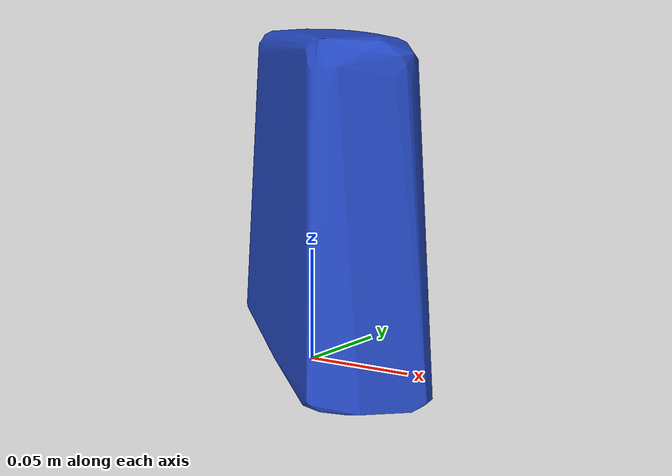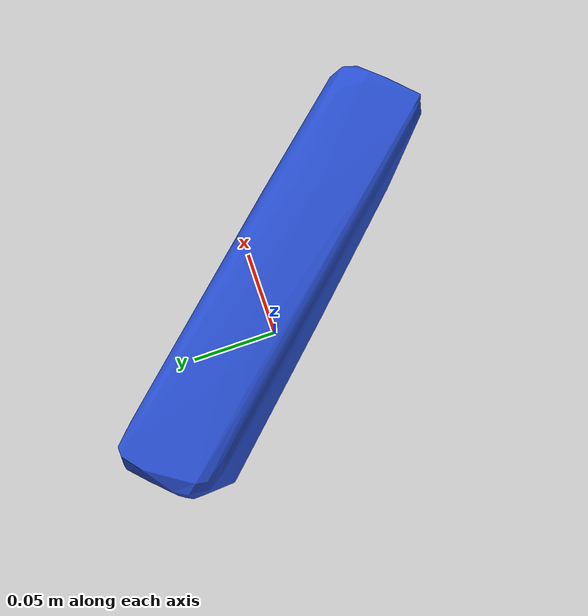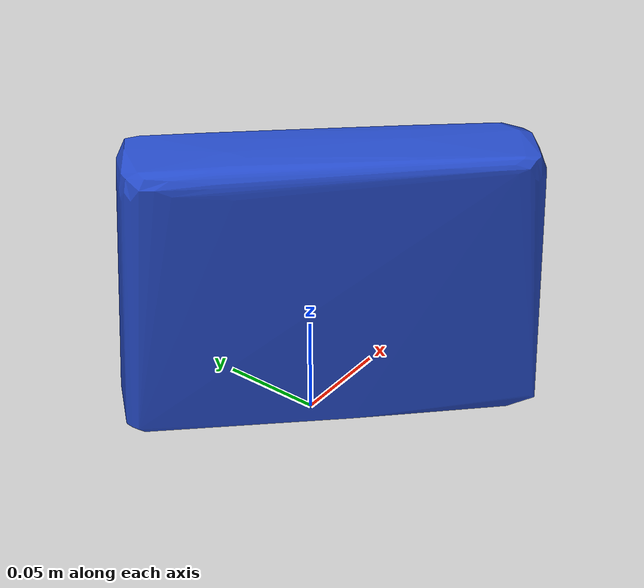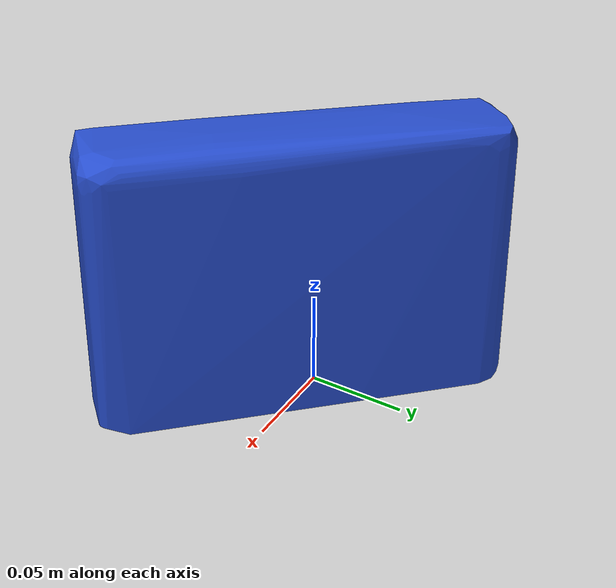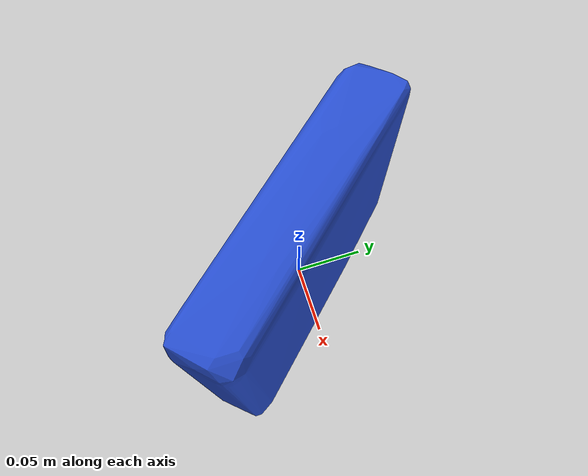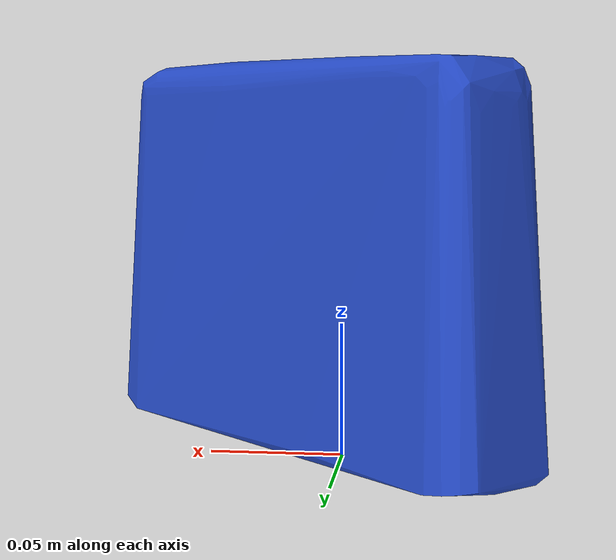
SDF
<?xml version='1.0'?>
<sdf version="1.4">
  <model name="nutrigrain_blueberry">
    <static>false</static>
    <link name="link">
      <inertial>
        <pose>0.01077868294606934 -0.003795264992634244 0.07436193271067441 1.5735515455337479 0.003982838553267409 -2.3900166141624393</pose>
        <mass>0.1356052739580978</mass>
        <inertia>
          <ixx>0.0006729916961067743</ixx>
          <ixy>-1.5373839233025812e-20</ixy>
          <ixz>-1.845560997323336e-19</ixz>
          <iyy>0.0004741854551144057</iyy>
          <iyz>1.2877282095768542e-20</iyz>
          <izz>0.0002498040517429833</izz>
        </inertia>
      </inertial>
      <collision name="collision">
        <geometry>
          <mesh>
            <!-- Use a downsampled mesh for collisions -->
            <uri>model:///nutrigrain_blueberry/nutrigrain_blueberry_250_collision.obj</uri>
	        </mesh>
        </geometry>
        <surface>
      </surface>
      </collision>
      <visual name="visual">
        <geometry>
          <mesh>
            <uri>model:///nutrigrain_blueberry/optimized_tsdf_texture_mapped_mesh.obj</uri>
	        </mesh>
        </geometry>
        <material>
          <script>
            <uri>model:///nutrigrain_blueberry/nutrigrain_blueberry.material</uri>
            <name>nutrigrain_blueberry</name>
          </script>
        </material>
      </visual>
    </link>
  </model>
</sdf>
